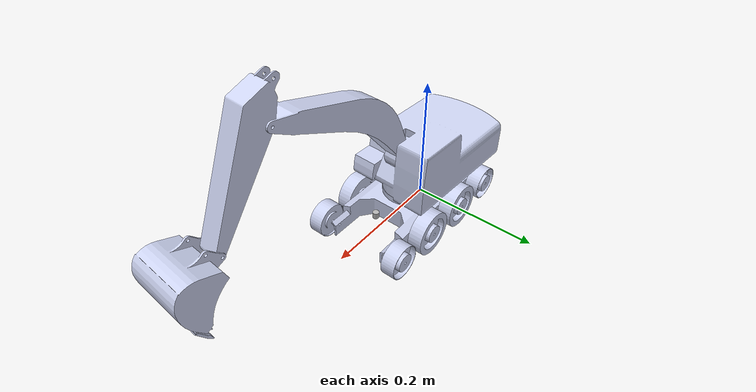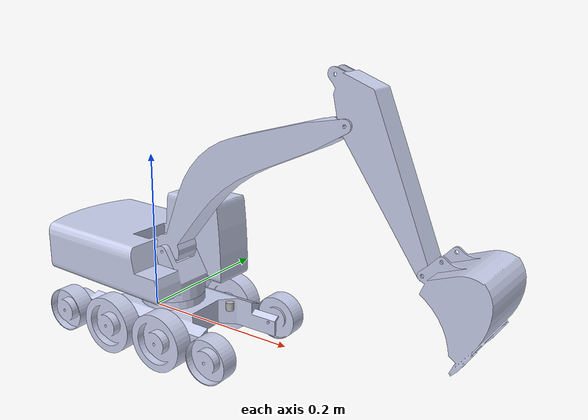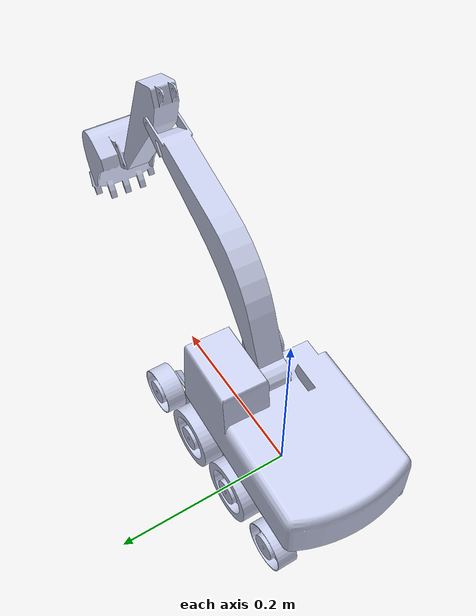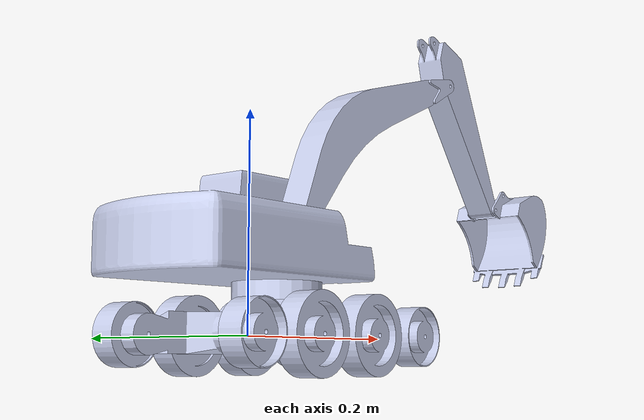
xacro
<?xml version="1.0" encoding="utf-8" ?>
<robot name="huina" xmlns:xacro="http://ros.org/wiki/xacro">

   <xacro:include filename="$(find huina)/urdf/huina.gazebo" />

    <link name="base_link">
    </link>

    <joint name="base_joint" type="fixed">
        <parent link="base_link"/>
        <child link="car_body"/>
        <origin xyz="0.0 0 0.09" rpy="0 0 0"/>

    </joint>

    <link name="car_body">

<inertial>
            <origin xyz="0.0277036815852469 -0.00448633462860135 -0.0849680860031838" rpy="0 0 0" />
            <mass value="0.588422576644468" />
            <inertia ixx="0.1" ixy="-8.76238916355358E-17" ixz="-1.19296623982282E-05" iyy="0.1" iyz="4.01026179745227E-18" izz="0.1" />
        </inertial>

        <visual>
            <origin xyz="0 0 0" rpy="0 0 0" />
            <geometry>
                <mesh filename="package://huina/meshes/car_body.STL" />
            </geometry>
            <material name="">
                <color rgba="0.792156862745098 0.819607843137255 0.933333333333333 1" />
            </material>
        </visual>
        <collision>
            <origin xyz="0 0 0" rpy="0 0 0" />
            <geometry>
                <mesh filename="package://huina/meshes/car_body.STL" />
            </geometry>
        </collision>
    </link>
    <link name="base">

<inertial>
            <origin xyz="-0.0516578618406733 0.00730392376929956 -0.0106979824392101" rpy="0 0 0" />
            <mass value="1.96019666506883" />
            <inertia ixx="0.1" ixy="-0.00106904041983792" ixz="-0.000329653626868119" iyy="0.1" iyz="-0.00046062303413282" izz="0.1" />
        </inertial>

        <visual>
            <origin xyz="0 0 0" rpy="0 0 0" />
            <geometry>
                <mesh filename="package://huina/meshes/base.STL" />
            </geometry>
            <material name="">
                <color rgba="0.792156862745098 0.819607843137255 0.933333333333333 1" />
            </material>
        </visual>
        <collision>
            <origin xyz="0 0 0" rpy="0 0 0" />
            <geometry>
                <mesh filename="package://huina/meshes/base.STL" />
            </geometry>
        </collision>
    </link>
    <joint name="base" type="revolute">
        <origin xyz="0.03319766986659 -0.00448633462860348 0" rpy="0 0 -0.0437181825672099" />
        <parent link="car_body" />
        <child link="base" />
        <axis xyz="0 0 1" />
        <limit lower="-3.14" upper="3.14" effort="10" velocity="300" />
    </joint>
    <link name="boom">

<inertial>
            <origin xyz="0.120439212469446 -0.0065000000000165 0.063340673199285" rpy="0 0 0" />
            <mass value="0.346577116035154" />
            <inertia ixx="0.000324111767708899" ixy="2.98306369298125E-16" ixz="-0.000595793208342359" iyy="0.00229961062751601" iyz="8.44322441823087E-17" izz="0.00203231488392336" />
        </inertial>

        <visual>
            <origin xyz="0 0 0" rpy="0 0 0" />
            <geometry>
                <mesh filename="package://huina/meshes/boom.STL" />
            </geometry>
            <material name="">
                <color rgba="0.792156862745098 0.819607843137255 0.933333333333333 1" />
            </material>
        </visual>
        <collision>
            <origin xyz="0 0 0" rpy="0 0 0" />
            <geometry>
                <mesh filename="package://huina/meshes/boom.STL" />
            </geometry>
        </collision>
    </link>
    <joint name="boom" type="revolute">
        <origin xyz="0.0130627142341879 0 0.00372992616434019" rpy="0 -0.361002570672547 0" />
        <parent link="base" />
        <child link="boom" />
        <axis xyz="0 1 0" />
        <limit lower="-1.04"
      upper="1.04"
      effort="10"
      velocity="300" />
    </joint>
    <link name="stick">

<inertial>
            <origin xyz="0.0112597216830215 -0.00749999999999149 -0.0452657830637142" rpy="0 0 0" />
            <mass value="0.185038629256696" />
            <inertia ixx="0.000508600419330306" ixy="4.79251241556483E-18" ixz="-5.53041462385249E-05" iyy="0.000522620275006081" iyz="5.43386458740211E-17" izz="3.99311814760734E-05" />
        </inertial>

        <visual>
            <origin xyz="0 0 0" rpy="0 0 0" />
            <geometry>
                <mesh filename="package://huina/meshes/stick.STL" />
            </geometry>
            <material name="">
                <color rgba="0.792156862745098 0.819607843137255 0.933333333333333 1" />
            </material>
        </visual>
        <collision>
            <origin xyz="0 0 0" rpy="0 0 0" />
            <geometry>
                <mesh filename="package://huina/meshes/stick.STL" />
            </geometry>
        </collision>
    </link>
    <joint name="stick" type="revolute">
        <origin xyz="0.287517822311501 0 0.0832232265493627" rpy="0 -0.261894013736616 0" />
        <parent link="boom" />
        <child link="stick" />
        <axis xyz="0 1 0" />
        <limit lower="-1.04"
      upper="0.41"
      effort="10"
      velocity="300" />
    </joint>
    <link name="bucket">

<inertial>
            <origin xyz="0.0506872800188194 -0.00749996910372607 -0.0103385762594749" rpy="0 0 0" />
            <mass value="0.0377327080940099" />
            <inertia ixx="6.52836855504669E-05" ixy="6.81676753113585E-11" ixz="8.46358419802204E-06" iyy="4.44464378991745E-05" iyz="1.0024609402386E-10" izz="5.17421678228667E-05" />
        </inertial>

        <visual>
            <origin xyz="0 0 0" rpy="0 0 0" />
            <geometry>
                <mesh filename="package://huina/meshes/bucket.STL" />
            </geometry>
            <material name="">
                <color rgba="0.792156862745098 0.819607843137255 0.933333333333333 1" />
            </material>
        </visual>
        <collision>
            <origin xyz="0 0 0" rpy="0 0 0" />
            <geometry>
                <mesh filename="package://huina/meshes/bucket.STL" />
            </geometry>
        </collision>
    </link>
    <joint name="bucket" type="revolute">
        <origin xyz="-0.00100000000000006 0 -0.1545" rpy="0 0.820840910158624 0" />
        <parent link="stick" />
        <child link="bucket" />
        <axis xyz="0 1 0" />
        <limit lower="-0.8"
      upper="2.61"
      effort="10"
      velocity="300" />
    </joint>
    <link name="eef">

<inertial>
            <origin xyz="-3.46944695195361E-18 -5.55111512312578E-17 4.99999999999667E-05" rpy="0 0 0" />
            <mass value="9.99999999999929E-10" />
            <inertia ixx="1.66666666666617E-18" ixy="-9.44066784614318E-32" ixz="-8.63990228645343E-32" iyy="1.6666666666665E-18" iyz="-2.45932226101636E-33" izz="1.66666666666634E-18" />
        </inertial>

        <visual>
            <origin xyz="0 0 0" rpy="0 0 0" />
            <geometry>
                <mesh filename="package://huina/meshes/eef.STL" />
            </geometry>
            <material name="">
                <color rgba="0.792156862745098 0.819607843137255 0.933333333333333 1" />
            </material>
        </visual>
        <collision>
            <origin xyz="0 0 0" rpy="0 0 0" />
            <geometry>
                <mesh filename="package://huina/meshes/eef.STL" />
            </geometry>
        </collision>
    </link>
    <joint name="eef" type="fixed">
        <origin xyz="0.0546901069661451 -0.00750000000001709 -0.0753462722079562" rpy="0 0 0" />
        <parent link="bucket" />
        <child link="eef" />
        <axis xyz="0 0 0" />
    </joint>
    <link name="left_rear">

<inertial>
            <origin xyz="1.38777878078145E-17 0.0101730561555077 8.32667268468867E-17" rpy="0 0 0" />
            <mass value="0.0349093775666898" />
            <inertia ixx="6.96072266110404E-06" ixy="-1.11134583990572E-38" ixz="9.90352161931369E-38" iyy="1.15634085203208E-05" iyz="3.1122916146822E-20" izz="6.96072266110405E-06" />
        </inertial>

        <visual>
            <origin xyz="0 0 0" rpy="0 0 0" />
            <geometry>
                <mesh filename="package://huina/meshes/left_rear.STL" />
            </geometry>
            <material name="">
                <color rgba="0.792156862745098 0.819607843137255 0.933333333333333 1" />
            </material>
        </visual>
        <collision>
            <origin xyz="0 0 0" rpy="0 0 0" />
            <geometry>
                <mesh filename="package://huina/meshes/left_rear.STL" />
            </geometry>
        </collision>
    </link>
    <joint name="left_rear" type="continuous">
        <origin xyz="-0.0803023301334109 0.0540136653713965 -0.0892049098984649" rpy="0 0 0" />
        <parent link="car_body" />
        <child link="left_rear" />
        <axis xyz="0 1 0" />
    </joint>
    <link name="left_1">

<inertial>
            <origin xyz="0 0.0108732532809099 6.93889390390723E-17" rpy="0 0 0" />
            <mass value="0.0739098941665168" />
            <inertia ixx="2.87221330625165E-05" ixy="2.06629866355479E-37" ixz="2.2160398176307E-37" iyy="5.15828136163184E-05" iyz="1.56515664075405E-19" izz="2.87221330625165E-05" />
        </inertial>

        <visual>
            <origin xyz="0 0 0" rpy="0 0 0" />
            <geometry>
                <mesh filename="package://huina/meshes/left_1.STL" />
            </geometry>
            <material name="">
                <color rgba="0.792156862745098 0.819607843137255 0.933333333333333 1" />
            </material>
        </visual>
        <collision>
            <origin xyz="0 0 0" rpy="0 0 0" />
            <geometry>
                <mesh filename="package://huina/meshes/left_1.STL" />
            </geometry>
        </collision>
    </link>
    <joint name="left_1" type="continuous">
        <origin xyz="-0.00555233013341085 0.0540136653713964 -0.0892049098984649" rpy="0 0 0" />
        <parent link="car_body" />
        <child link="left_1" />
        <axis xyz="0 1 0" />
    </joint>
    <link name="left_2">

<inertial>
            <origin xyz="0 0.0108732532809099 6.93889390390723E-17" rpy="0 0 0" />
            <mass value="0.0739098941665168" />
            <inertia ixx="2.87221330625165E-05" ixy="-9.05473700315616E-39" ixz="2.473064231122E-37" iyy="5.15828136163184E-05" iyz="1.56515664075404E-19" izz="2.87221330625165E-05" />
        </inertial>

        <visual>
            <origin xyz="0 0 0" rpy="0 0 0" />
            <geometry>
                <mesh filename="package://huina/meshes/left_2.STL" />
            </geometry>
            <material name="">
                <color rgba="0.792156862745098 0.819607843137255 0.933333333333333 1" />
            </material>
        </visual>
        <collision>
            <origin xyz="0 0 0" rpy="0 0 0" />
            <geometry>
                <mesh filename="package://huina/meshes/left_2.STL" />
            </geometry>
        </collision>
    </link>
    <joint name="left_2" type="continuous">
        <origin xyz="0.0744476698665892 0.0540136653713964 -0.0892049098984649" rpy="0 0 0" />
        <parent link="car_body" />
        <child link="left_2" />
        <axis xyz="0 1 0" />
    </joint>
    <link name="left_3">

<inertial>
            <origin xyz="-2.77555756156289E-17 0.0101730561555077 8.32667268468867E-17" rpy="0 0 0" />
            <mass value="0.0349093775666898" />
            <inertia ixx="6.96072266110404E-06" ixy="-1.11134583990572E-38" ixz="9.90352161931369E-38" iyy="1.15634085203208E-05" iyz="3.1122916146822E-20" izz="6.96072266110405E-06" />
        </inertial>

        <visual>
            <origin xyz="0 0 0" rpy="0 0 0" />
            <geometry>
                <mesh filename="package://huina/meshes/left_3.STL" />
            </geometry>
            <material name="">
                <color rgba="0.792156862745098 0.819607843137255 0.933333333333333 1" />
            </material>
        </visual>
        <collision>
            <origin xyz="0 0 0" rpy="0 0 0" />
            <geometry>
                <mesh filename="package://huina/meshes/left_3.STL" />
            </geometry>
        </collision>
    </link>
    <joint name="left_3" type="continuous">
        <origin xyz="0.149197669866589 0.0540136653713965 -0.0892049098984649" rpy="0 0 0" />
        <parent link="car_body" />
        <child link="left_3" />
        <axis xyz="0 1 0" />
    </joint>
    <link name="right_rear">

<inertial>
            <origin xyz="1.38777878078145E-17 -0.0101730561555075 1.38777878078145E-17" rpy="0 0 0" />
            <mass value="0.0349093775666898" />
            <inertia ixx="6.96072266110407E-06" ixy="1.11134583990565E-38" ixz="-9.90352161931368E-38" iyy="1.15634085203208E-05" iyz="-8.14632703297257E-22" izz="6.96072266110408E-06" />
        </inertial>

        <visual>
            <origin xyz="0 0 0" rpy="0 0 0" />
            <geometry>
                <mesh filename="package://huina/meshes/right_rear.STL" />
            </geometry>
            <material name="">
                <color rgba="0.792156862745098 0.819607843137255 0.933333333333333 1" />
            </material>
        </visual>
        <collision>
            <origin xyz="0 0 0" rpy="0 0 0" />
            <geometry>
                <mesh filename="package://huina/meshes/right_rear.STL" />
            </geometry>
        </collision>
    </link>
    <joint name="right_rear" type="continuous">
        <origin xyz="-0.0803023301334108 -0.0629863346286033 -0.0892049098984649" rpy="0 0 0" />
        <parent link="car_body" />
        <child link="right_rear" />
        <axis xyz="0 1 0" />
    </joint>
    <link name="right_1">

<inertial>
            <origin xyz="0 -0.0108732532809096 0" rpy="0 0 0" />
            <mass value="0.0739098941665168" />
            <inertia ixx="2.87221330625165E-05" ixy="9.05473700315438E-39" ixz="-2.473064231122E-37" iyy="5.15828136163183E-05" iyz="-1.49101536388842E-21" izz="2.87221330625165E-05" />
        </inertial>

        <visual>
            <origin xyz="0 0 0" rpy="0 0 0" />
            <geometry>
                <mesh filename="package://huina/meshes/right_1.STL" />
            </geometry>
            <material name="">
                <color rgba="0.792156862745098 0.819607843137255 0.933333333333333 1" />
            </material>
        </visual>
        <collision>
            <origin xyz="0 0 0" rpy="0 0 0" />
            <geometry>
                <mesh filename="package://huina/meshes/right_1.STL" />
            </geometry>
        </collision>
    </link>
    <joint name="right_1" type="continuous">
        <origin xyz="-0.00555233013341085 -0.0629863346286033 -0.0892049098984649" rpy="0 0 0" />
        <parent link="car_body" />
        <child link="right_1" />
        <axis xyz="0 1 0" />
    </joint>
    <link name="right_2">

<inertial>
            <origin xyz="0 -0.010873 0" rpy="0 0 0" />
            <mass value="0.07391" />
            <inertia ixx="2.8722E-05" ixy="-3.5761E-21" ixz="1.6941E-21" iyy="5.1583E-05" iyz="-1.9395E-21" izz="2.8722E-05" />
        </inertial>

        <visual>
            <origin xyz="0 0 0" rpy="0 0 0" />
            <geometry>
                <mesh filename="package://huina/meshes/right_2.STL" />
            </geometry>
            <material name="">
                <color rgba="0.79216 0.81961 0.93333 1" />
            </material>
        </visual>
        <collision>
            <origin xyz="0 0 0" rpy="0 0 0" />
            <geometry>
                <mesh filename="package://huina/meshes/right_2.STL" />
            </geometry>
        </collision>
    </link>
    <joint name="right_2" type="continuous">
        <origin xyz="0.0744476698665892 -0.0629863346286033 -0.0892049098984649" rpy="-3.14159265358979 -1.02948924380112 3.14159265358979" />
        <parent link="car_body" />
        <child link="right_2" />
        <axis xyz="0 1 0" />
    </joint>
    <link name="right_3">

<inertial>
            <origin xyz="-2.7756E-17 -0.010173 1.3878E-17" rpy="0 0 0" />
            <mass value="0.034909" />
            <inertia ixx="6.9607E-06" ixy="-1.4108E-24" ixz="5.294E-23" iyy="1.1563E-05" iyz="-1.353E-21" izz="6.9607E-06" />
        </inertial>

        <visual>
            <origin xyz="0 0 0" rpy="0 0 0" />
            <geometry>
                <mesh filename="package://huina/meshes/right_3.STL" />
            </geometry>
            <material name="">
                <color rgba="0.79216 0.81961 0.93333 1" />
            </material>
        </visual>
        <collision>
            <origin xyz="0 0 0" rpy="0 0 0" />
            <geometry>
                <mesh filename="package://huina/meshes/right_3.STL" />
            </geometry>
        </collision>
    </link>
    <joint name="right_3" type="continuous">
        <origin xyz="0.1492 -0.062986 -0.089205" rpy="0 0.043635 0" />
        <parent link="car_body" />
        <child link="right_3" />
        <axis xyz="0 1 0" />
    </joint>

<transmission name="trans_base">
        <type>transmission_interface/SimpleTransmission</type>
        <joint name="base">
            <hardwareInterface>hardware_interface/PositionJointInterface</hardwareInterface>
        </joint>
        <actuator name="base_motor">
            <hardwareInterface>hardware_interface/PositionJointInterface</hardwareInterface>
            <mechanicalReduction>1</mechanicalReduction>
        </actuator>
    </transmission>
    <transmission name="trans_boom">
        <type>transmission_interface/SimpleTransmission</type>
        <joint name="boom">
            <hardwareInterface>hardware_interface/PositionJointInterface</hardwareInterface>
        </joint>
        <actuator name="boom_motor">
            <hardwareInterface>hardware_interface/PositionJointInterface</hardwareInterface>
            <mechanicalReduction>1</mechanicalReduction>
        </actuator>
    </transmission>
    <transmission name="trans_stick">
        <type>transmission_interface/SimpleTransmission</type>
        <joint name="stick">
            <hardwareInterface>hardware_interface/PositionJointInterface</hardwareInterface>
        </joint>
        <actuator name="stick_motor">
            <hardwareInterface>hardware_interface/PositionJointInterface</hardwareInterface>
            <mechanicalReduction>1</mechanicalReduction>
        </actuator>
    </transmission>
    <transmission name="trans_bucket">
        <type>transmission_interface/SimpleTransmission</type>
        <joint name="bucket">
            <hardwareInterface>hardware_interface/PositionJointInterface</hardwareInterface>
        </joint>
        <actuator name="bucket_motor">
            <hardwareInterface>hardware_interface/PositionJointInterface</hardwareInterface>
            <mechanicalReduction>1</mechanicalReduction>
        </actuator>
    </transmission>
    <transmission name="trans_left_rear">
        <type>transmission_interface/SimpleTransmission</type>
        <joint name="left_rear">
            <hardwareInterface>hardware_interface/VelocityJointInterface</hardwareInterface>
        </joint>
        <actuator name="left_rear_motor">
            <hardwareInterface>hardware_interface/VelocityJointInterface</hardwareInterface>
            <mechanicalReduction>1</mechanicalReduction>
        </actuator>
    </transmission>
    <transmission name="trans_left_1">
        <type>transmission_interface/SimpleTransmission</type>
        <joint name="left_1">
            <hardwareInterface>hardware_interface/VelocityJointInterface</hardwareInterface>
        </joint>
        <actuator name="left_1_motor">
            <hardwareInterface>hardware_interface/VelocityJointInterface</hardwareInterface>
            <mechanicalReduction>1</mechanicalReduction>
        </actuator>
    </transmission>
    <transmission name="trans_left_2">
        <type>transmission_interface/SimpleTransmission</type>
        <joint name="left_2">
            <hardwareInterface>hardware_interface/VelocityJointInterface</hardwareInterface>
        </joint>
        <actuator name="left_2_motor">
            <hardwareInterface>hardware_interface/VelocityJointInterface</hardwareInterface>
            <mechanicalReduction>1</mechanicalReduction>
        </actuator>
    </transmission>
    <transmission name="trans_left_3">
        <type>transmission_interface/SimpleTransmission</type>
        <joint name="left_3">
            <hardwareInterface>hardware_interface/VelocityJointInterface</hardwareInterface>
        </joint>
        <actuator name="left_3_motor">
            <hardwareInterface>hardware_interface/VelocityJointInterface</hardwareInterface>
            <mechanicalReduction>1</mechanicalReduction>
        </actuator>
    </transmission>
    <transmission name="trans_right_rear">
        <type>transmission_interface/SimpleTransmission</type>
        <joint name="right_rear">
            <hardwareInterface>hardware_interface/VelocityJointInterface</hardwareInterface>
        </joint>
        <actuator name="right_rear_motor">
            <hardwareInterface>hardware_interface/VelocityJointInterface</hardwareInterface>
            <mechanicalReduction>1</mechanicalReduction>
        </actuator>
    </transmission>
    <transmission name="trans_right_1">
        <type>transmission_interface/SimpleTransmission</type>
        <joint name="right_1">
            <hardwareInterface>hardware_interface/VelocityJointInterface</hardwareInterface>
        </joint>
        <actuator name="right_1_motor">
            <hardwareInterface>hardware_interface/VelocityJointInterface</hardwareInterface>
            <mechanicalReduction>1</mechanicalReduction>
        </actuator>
    </transmission>
    <transmission name="trans_right_2">
        <type>transmission_interface/SimpleTransmission</type>
        <joint name="right_2">
            <hardwareInterface>hardware_interface/VelocityJointInterface</hardwareInterface>
        </joint>
        <actuator name="right_2_motor">
            <hardwareInterface>hardware_interface/VelocityJointInterface</hardwareInterface>
            <mechanicalReduction>1</mechanicalReduction>
        </actuator>
    </transmission>
    <transmission name="trans_right_3">
        <type>transmission_interface/SimpleTransmission</type>
        <joint name="right_3">
            <hardwareInterface>hardware_interface/VelocityJointInterface</hardwareInterface>
        </joint>
        <actuator name="right_3_motor">
            <hardwareInterface>hardware_interface/VelocityJointInterface</hardwareInterface>
            <mechanicalReduction>1</mechanicalReduction>
        </actuator>
    </transmission>
    <gazebo>
        <plugin name="gazebo_ros_control" filename="libgazebo_ros_control.so">
            <robotNamespace>/</robotNamespace>
        </plugin>
    </gazebo>

      <link name="sensor_laser">
    <collision>
      <origin xyz="0 0 0" rpy="0 0 0"/>
      <geometry>
    <box size="0.01 0.01 0.01"/>
      </geometry>
    </collision>

    <visual>
      <origin xyz="0 0 0" rpy="0 0 0"/>
      <geometry>
         <cylinder radius="0.005" length="0.01"/>
      </geometry>
    </visual>

    <inertial>
      <mass value="1e-5" />
      <origin xyz="0 0 0" rpy="0 0 0"/>
      <inertia ixx="1e-6" ixy="0" ixz="0" iyy="1e-6" iyz="0" izz="1e-6" />
    </inertial>
  </link>

  <joint name="laser_joint" type="fixed">
    <axis xyz="0 1 0" />
    <origin xyz="0.12 0 -0.06" rpy="0 0 0"/>
    <parent link="car_body"/>
    <child link="sensor_laser"/>
  </joint>

    <link name="imu_link"/>
    <joint name="imu_joint" type="fixed">
      <origin xyz="0.0 0 0.0" rpy="0 0 0" />
      <parent link="car_body" />
      <child link="imu_link" />
    </joint>
    <gazebo reference="imu_link">
    </gazebo>

    <link name="gps_link"/>
    <joint name="gps_joint" type="fixed">
      <origin xyz="0.0 0 0.0" rpy="0 0 0" />
      <parent link="car_body" />
      <child link="gps_link" />
    </joint>
    <gazebo reference="gps_link">
    </gazebo>

</robot>
